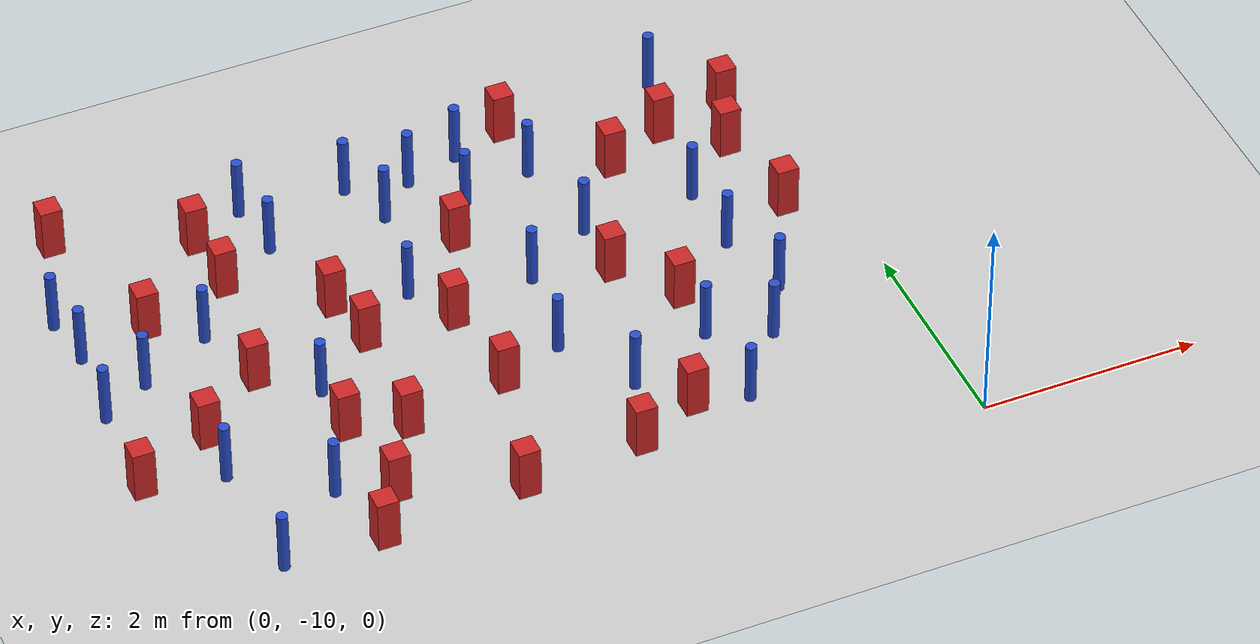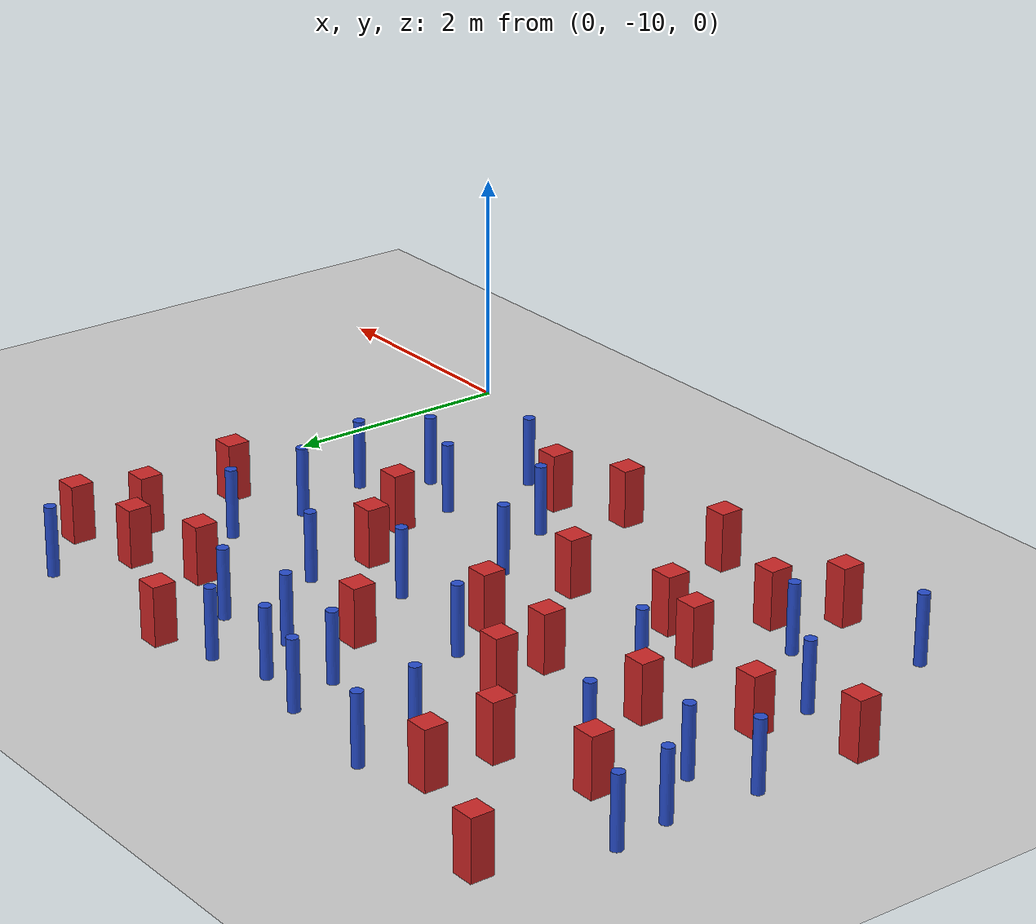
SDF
<sdf version="1.6">
 <world name="default">
  <model name="ground_plane">
   <static>1</static>
   <link name="link">
    <collision name="collision">
     <geometry><plane><normal>0 0 1</normal><size>100 100</size></plane></geometry>
     <surface><friction><ode><mu>100</mu><mu2>50</mu2></ode></friction></surface>
    </collision>
    <visual name="visual">
     <cast_shadows>0</cast_shadows>
     <geometry><plane><normal>0 0 1</normal><size>100 100</size></plane></geometry>
     <material>
      <ambient>1.0 1.0 1.0 1.0</ambient>
      <diffuse>0.8 0.8 0.8 1.0</diffuse>
      <specular>0.01 0.01 0.01 1.000000</specular>
     </material>
    </visual>
   </link>
  </model>
  <model name="pole_obstacle1">
   <static>true</static>
   <pose>-0.977106564519 -7.90810374782 7.38925637345e-09 -8.47170692799e-08 1.2497676509e-08 -1.74513093015e-07</pose>
   <link name="link">
    <pose>0 0 0.3 0 -0 0</pose>
    <inertial>
     <mass>1</mass>
     <inertia><ixx>0.145833</ixx><ixy>0</ixy><ixz>0</ixz><iyy>0.145833</iyy><iyz>0</iyz><izz>0.125</izz></inertia>
    </inertial>
    <collision name="collision">
     <geometry><cylinder><radius>0.05</radius><length>.6</length></cylinder></geometry>
    </collision>
    <visual name="visual">
     <geometry><cylinder><radius>0.05</radius><length>.6</length></cylinder></geometry>
     <material>
      <script><name>Gazebo/Blue</name><uri>file://media/materials/scripts/gazebo.material</uri></script>
     </material>
    </visual>
   </link>
  </model>
  <model name="pole_obstacle23">
   <static>true</static>
   <pose>-1.17780498482 -6.50733422358 7.38925637345e-09 -8.47170692799e-08 1.24976765033e-08 -1.74513093018e-07</pose>
   <link name="link">
    <pose>0 0 0.3 0 -0 0</pose>
    <inertial>
     <mass>1</mass>
     <inertia><ixx>0.145833</ixx><ixy>0</ixy><ixz>0</ixz><iyy>0.145833</iyy><iyz>0</iyz><izz>0.125</izz></inertia>
    </inertial>
    <collision name="collision">
     <geometry><cylinder><radius>0.05</radius><length>.6</length></cylinder></geometry>
    </collision>
    <visual name="visual">
     <geometry><cylinder><radius>0.05</radius><length>.6</length></cylinder></geometry>
     <material>
      <script><name>Gazebo/Blue</name><uri>file://media/materials/scripts/gazebo.material</uri></script>
     </material>
    </visual>
   </link>
  </model>
  <model name="square_post_obstacle20">
   <static>true</static>
   <pose>-2.86813609963 -9.24950000079 1.91545236811e-07 -7.35059704564e-06 1.12565212e-07 2.39332434364e-05</pose>
   <link name="link">
    <pose>0 0 0.25 0 -0 0</pose>
    <inertial>
     <mass>100</mass>
     <inertia>
      <ixx>0.166667</ixx>
      <ixy>0</ixy>
      <ixz>0</ixz>
      <iyy>0.166667</iyy>
      <iyz>0</iyz>
      <izz>0.166667</izz>
     </inertia>
    </inertial>
    <collision name="collision"><geometry><box><size>.2 .2 .5</size></box></geometry></collision>
    <visual name="visual">
     <geometry><box><size>.2 .2 .5</size></box></geometry>
     <material>
      <script><name>Gazebo/Red</name><uri>file://media/materials/scripts/gazebo.material</uri></script>
     </material>
    </visual>
   </link>
  </model>
  <model name="pole_obstacle31">
   <static>true</static>
   <pose>-2.90657559967 -6.9559049092 7.38925637345e-09 -8.47170692798e-08 1.24976765033e-08 -1.74513093019e-07</pose>
   <link name="link">
    <pose>0 0 0.3 0 -0 0</pose>
    <inertial>
     <mass>1</mass>
     <inertia><ixx>0.145833</ixx><ixy>0</ixy><ixz>0</ixz><iyy>0.145833</iyy><iyz>0</iyz><izz>0.125</izz></inertia>
    </inertial>
    <collision name="collision">
     <geometry><cylinder><radius>0.05</radius><length>.6</length></cylinder></geometry>
    </collision>
    <visual name="visual">
     <geometry><cylinder><radius>0.05</radius><length>.6</length></cylinder></geometry>
     <material>
      <script><name>Gazebo/Blue</name><uri>file://media/materials/scripts/gazebo.material</uri></script>
     </material>
    </visual>
   </link>
  </model>
  <model name="square_post_obstacle24">
   <static>true</static>
   <pose>-3.33205656357 -6.23677863321 1.91545236811e-07 -7.35059704564e-06 1.12565212e-07 2.39332434364e-05</pose>
   <link name="link">
    <pose>0 0 0.25 0 -0 0</pose>
    <inertial>
     <mass>100</mass>
     <inertia>
      <ixx>0.166667</ixx>
      <ixy>0</ixy>
      <ixz>0</ixz>
      <iyy>0.166667</iyy>
      <iyz>0</iyz>
      <izz>0.166667</izz>
     </inertia>
    </inertial>
    <collision name="collision"><geometry><box><size>.2 .2 .5</size></box></geometry></collision>
    <visual name="visual">
     <geometry><box><size>.2 .2 .5</size></box></geometry>
     <material>
      <script><name>Gazebo/Red</name><uri>file://media/materials/scripts/gazebo.material</uri></script>
     </material>
    </visual>
   </link>
  </model>
  <model name="square_post_obstacle29">
   <static>true</static>
   <pose>-4.63807292708 -6.58877502498 1.91545236811e-07 -7.35059704564e-06 1.12565212e-07 2.39332434364e-05</pose>
   <link name="link">
    <pose>0 0 0.25 0 -0 0</pose>
    <inertial>
     <mass>100</mass>
     <inertia>
      <ixx>0.166667</ixx>
      <ixy>0</ixy>
      <ixz>0</ixz>
      <iyy>0.166667</iyy>
      <iyz>0</iyz>
      <izz>0.166667</izz>
     </inertia>
    </inertial>
    <collision name="collision"><geometry><box><size>.2 .2 .5</size></box></geometry></collision>
    <visual name="visual">
     <geometry><box><size>.2 .2 .5</size></box></geometry>
     <material>
      <script><name>Gazebo/Red</name><uri>file://media/materials/scripts/gazebo.material</uri></script>
     </material>
    </visual>
   </link>
  </model>
  <model name="pole_obstacle35">
   <static>true</static>
   <pose>-2.90774598871 -5.19703590711 7.38925637345e-09 -8.47170692798e-08 1.24976765033e-08 -1.74513093019e-07</pose>
   <link name="link">
    <pose>0 0 0.3 0 -0 0</pose>
    <inertial>
     <mass>1</mass>
     <inertia><ixx>0.145833</ixx><ixy>0</ixy><ixz>0</ixz><iyy>0.145833</iyy><iyz>0</iyz><izz>0.125</izz></inertia>
    </inertial>
    <collision name="collision">
     <geometry><cylinder><radius>0.05</radius><length>.6</length></cylinder></geometry>
    </collision>
    <visual name="visual">
     <geometry><cylinder><radius>0.05</radius><length>.6</length></cylinder></geometry>
     <material>
      <script><name>Gazebo/Blue</name><uri>file://media/materials/scripts/gazebo.material</uri></script>
     </material>
    </visual>
   </link>
  </model>
  <model name="pole_obstacle36">
   <static>true</static>
   <pose>-5.11671994762 -7.55337310261 7.38925637345e-09 -8.47170692796e-08 1.24976764786e-08 -1.74513093032e-07</pose>
   <link name="link">
    <pose>0 0 0.3 0 -0 0</pose>
    <inertial>
     <mass>1</mass>
     <inertia><ixx>0.145833</ixx><ixy>0</ixy><ixz>0</ixz><iyy>0.145833</iyy><iyz>0</iyz><izz>0.125</izz></inertia>
    </inertial>
    <collision name="collision">
     <geometry><cylinder><radius>0.05</radius><length>.6</length></cylinder></geometry>
    </collision>
    <visual name="visual">
     <geometry><cylinder><radius>0.05</radius><length>.6</length></cylinder></geometry>
     <material>
      <script><name>Gazebo/Blue</name><uri>file://media/materials/scripts/gazebo.material</uri></script>
     </material>
    </visual>
   </link>
  </model>
  <model name="pole_obstacle37">
   <static>true</static>
   <pose>-5.79323783633 -6.5178271556 7.38925637345e-09 -8.47170692796e-08 1.24976764786e-08 -1.74513093032e-07</pose>
   <link name="link">
    <pose>0 0 0.3 0 -0 0</pose>
    <inertial>
     <mass>1</mass>
     <inertia><ixx>0.145833</ixx><ixy>0</ixy><ixz>0</ixz><iyy>0.145833</iyy><iyz>0</iyz><izz>0.125</izz></inertia>
    </inertial>
    <collision name="collision">
     <geometry><cylinder><radius>0.05</radius><length>.6</length></cylinder></geometry>
    </collision>
    <visual name="visual">
     <geometry><cylinder><radius>0.05</radius><length>.6</length></cylinder></geometry>
     <material>
      <script><name>Gazebo/Blue</name><uri>file://media/materials/scripts/gazebo.material</uri></script>
     </material>
    </visual>
   </link>
  </model>
  <model name="pole_obstacle39">
   <static>true</static>
   <pose>-3.78104056907 -5.6990967724 7.38925637345e-09 -8.47170692798e-08 1.24976765033e-08 -1.74513093019e-07</pose>
   <link name="link">
    <pose>0 0 0.3 0 -0 0</pose>
    <inertial>
     <mass>1</mass>
     <inertia><ixx>0.145833</ixx><ixy>0</ixy><ixz>0</ixz><iyy>0.145833</iyy><iyz>0</iyz><izz>0.125</izz></inertia>
    </inertial>
    <collision name="collision">
     <geometry><cylinder><radius>0.05</radius><length>.6</length></cylinder></geometry>
    </collision>
    <visual name="visual">
     <geometry><cylinder><radius>0.05</radius><length>.6</length></cylinder></geometry>
     <material>
      <script><name>Gazebo/Blue</name><uri>file://media/materials/scripts/gazebo.material</uri></script>
     </material>
    </visual>
   </link>
  </model>
  <model name="pole_obstacle41">
   <static>true</static>
   <pose>-1.26874110743 -8.43139247825 7.38925637345e-09 -8.47170692798e-08 1.24976764881e-08 -1.74513093027e-07</pose>
   <link name="link">
    <pose>0 0 0.3 0 -0 0</pose>
    <inertial>
     <mass>1</mass>
     <inertia><ixx>0.145833</ixx><ixy>0</ixy><ixz>0</ixz><iyy>0.145833</iyy><iyz>0</iyz><izz>0.125</izz></inertia>
    </inertial>
    <collision name="collision">
     <geometry><cylinder><radius>0.05</radius><length>.6</length></cylinder></geometry>
    </collision>
    <visual name="visual">
     <geometry><cylinder><radius>0.05</radius><length>.6</length></cylinder></geometry>
     <material>
      <script><name>Gazebo/Blue</name><uri>file://media/materials/scripts/gazebo.material</uri></script>
     </material>
    </visual>
   </link>
  </model>
  <model name="square_post_obstacle32">
   <static>true</static>
   <pose>-2.23821439525 -7.14210496996 1.91545236811e-07 -7.35059704564e-06 1.12565212e-07 2.39332434364e-05</pose>
   <link name="link">
    <pose>0 0 0.25 0 -0 0</pose>
    <inertial>
     <mass>100</mass>
     <inertia>
      <ixx>0.166667</ixx>
      <ixy>0</ixy>
      <ixz>0</ixz>
      <iyy>0.166667</iyy>
      <iyz>0</iyz>
      <izz>0.166667</izz>
     </inertia>
    </inertial>
    <collision name="collision"><geometry><box><size>.2 .2 .5</size></box></geometry></collision>
    <visual name="visual">
     <geometry><box><size>.2 .2 .5</size></box></geometry>
     <material>
      <script><name>Gazebo/Red</name><uri>file://media/materials/scripts/gazebo.material</uri></script>
     </material>
    </visual>
   </link>
  </model>
  <model name="square_post_obstacle36">
   <static>true</static>
   <pose>-4.99526958046 -8.95248441985 1.91545236811e-07 -7.35059704564e-06 1.12565212e-07 2.39332434364e-05</pose>
   <link name="link">
    <pose>0 0 0.25 0 -0 0</pose>
    <inertial>
     <mass>100</mass>
     <inertia>
      <ixx>0.166667</ixx>
      <ixy>0</ixy>
      <ixz>0</ixz>
      <iyy>0.166667</iyy>
      <iyz>0</iyz>
      <izz>0.166667</izz>
     </inertia>
    </inertial>
    <collision name="collision"><geometry><box><size>.2 .2 .5</size></box></geometry></collision>
    <visual name="visual">
     <geometry><box><size>.2 .2 .5</size></box></geometry>
     <material>
      <script><name>Gazebo/Red</name><uri>file://media/materials/scripts/gazebo.material</uri></script>
     </material>
    </visual>
   </link>
  </model>
  <model name="square_post_obstacle42">
   <static>true</static>
   <pose>-3.63885541461 -8.07731059607 1.91545236811e-07 -7.35059704564e-06 1.12565212e-07 2.39332434364e-05</pose>
   <link name="link">
    <pose>0 0 0.25 0 -0 0</pose>
    <inertial>
     <mass>100</mass>
     <inertia>
      <ixx>0.166667</ixx>
      <ixy>0</ixy>
      <ixz>0</ixz>
      <iyy>0.166667</iyy>
      <iyz>0</iyz>
      <izz>0.166667</izz>
     </inertia>
    </inertial>
    <collision name="collision"><geometry><box><size>.2 .2 .5</size></box></geometry></collision>
    <visual name="visual">
     <geometry><box><size>.2 .2 .5</size></box></geometry>
     <material>
      <script><name>Gazebo/Red</name><uri>file://media/materials/scripts/gazebo.material</uri></script>
     </material>
    </visual>
   </link>
  </model>
  <model name="square_post_obstacle44">
   <static>true</static>
   <pose>-6.9381495544 -8.05555435549 1.91545236811e-07 -7.35059704564e-06 1.12565212e-07 2.39332434364e-05</pose>
   <link name="link">
    <pose>0 0 0.25 0 -0 0</pose>
    <inertial>
     <mass>100</mass>
     <inertia>
      <ixx>0.166667</ixx>
      <ixy>0</ixy>
      <ixz>0</ixz>
      <iyy>0.166667</iyy>
      <iyz>0</iyz>
      <izz>0.166667</izz>
     </inertia>
    </inertial>
    <collision name="collision"><geometry><box><size>.2 .2 .5</size></box></geometry></collision>
    <visual name="visual">
     <geometry><box><size>.2 .2 .5</size></box></geometry>
     <material>
      <script><name>Gazebo/Red</name><uri>file://media/materials/scripts/gazebo.material</uri></script>
     </material>
    </visual>
   </link>
  </model>
  <model name="square_post_obstacle49">
   <static>true</static>
   <pose>-2.4064913676 -5.04163717046 1.91545236811e-07 -7.35059704564e-06 1.12565212e-07 2.39332434364e-05</pose>
   <link name="link">
    <pose>0 0 0.25 0 -0 0</pose>
    <inertial>
     <mass>100</mass>
     <inertia>
      <ixx>0.166667</ixx>
      <ixy>0</ixy>
      <ixz>0</ixz>
      <iyy>0.166667</iyy>
      <iyz>0</iyz>
      <izz>0.166667</izz>
     </inertia>
    </inertial>
    <collision name="collision"><geometry><box><size>.2 .2 .5</size></box></geometry></collision>
    <visual name="visual">
     <geometry><box><size>.2 .2 .5</size></box></geometry>
     <material>
      <script><name>Gazebo/Red</name><uri>file://media/materials/scripts/gazebo.material</uri></script>
     </material>
    </visual>
   </link>
  </model>
  <model name="pole_obstacle68">
   <static>true</static>
   <pose>-6.17812981211 -9.38923308354 7.38925637345e-09 -8.471706928e-08 1.24976765081e-08 -1.74513093015e-07</pose>
   <link name="link">
    <pose>0 0 0.3 0 -0 0</pose>
    <inertial>
     <mass>1</mass>
     <inertia><ixx>0.145833</ixx><ixy>0</ixy><ixz>0</ixz><iyy>0.145833</iyy><iyz>0</iyz><izz>0.125</izz></inertia>
    </inertial>
    <collision name="collision">
     <geometry><cylinder><radius>0.05</radius><length>.6</length></cylinder></geometry>
    </collision>
    <visual name="visual">
     <geometry><cylinder><radius>0.05</radius><length>.6</length></cylinder></geometry>
     <material>
      <script><name>Gazebo/Blue</name><uri>file://media/materials/scripts/gazebo.material</uri></script>
     </material>
    </visual>
   </link>
  </model>
  <model name="square_post_obstacle51">
   <static>true</static>
   <pose>-0.634851174952 -6.02802221747 1.91545236811e-07 -7.35059704564e-06 1.12565212e-07 2.39332434364e-05</pose>
   <link name="link">
    <pose>0 0 0.25 0 -0 0</pose>
    <inertial>
     <mass>100</mass>
     <inertia>
      <ixx>0.166667</ixx>
      <ixy>0</ixy>
      <ixz>0</ixz>
      <iyy>0.166667</iyy>
      <iyz>0</iyz>
      <izz>0.166667</izz>
     </inertia>
    </inertial>
    <collision name="collision"><geometry><box><size>.2 .2 .5</size></box></geometry></collision>
    <visual name="visual">
     <geometry><box><size>.2 .2 .5</size></box></geometry>
     <material>
      <script><name>Gazebo/Red</name><uri>file://media/materials/scripts/gazebo.material</uri></script>
     </material>
    </visual>
   </link>
  </model>
  <model name="pole_obstacle69">
   <static>true</static>
   <pose>-5.46517937993 -8.7423076603 7.38925637345e-09 -8.471706928e-08 1.24976765081e-08 -1.74513093015e-07</pose>
   <link name="link">
    <pose>0 0 0.3 0 -0 0</pose>
    <inertial>
     <mass>1</mass>
     <inertia><ixx>0.145833</ixx><ixy>0</ixy><ixz>0</ixz><iyy>0.145833</iyy><iyz>0</iyz><izz>0.125</izz></inertia>
    </inertial>
    <collision name="collision">
     <geometry><cylinder><radius>0.05</radius><length>.6</length></cylinder></geometry>
    </collision>
    <visual name="visual">
     <geometry><cylinder><radius>0.05</radius><length>.6</length></cylinder></geometry>
     <material>
      <script><name>Gazebo/Blue</name><uri>file://media/materials/scripts/gazebo.material</uri></script>
     </material>
    </visual>
   </link>
  </model>
  <model name="square_post_obstacle61">
   <static>true</static>
   <pose>-6.61290565987 -4.87920839196 1.91545236811e-07 -7.35059704564e-06 1.12565212e-07 2.39332434364e-05</pose>
   <link name="link">
    <pose>0 0 0.25 0 -0 0</pose>
    <inertial>
     <mass>100</mass>
     <inertia>
      <ixx>0.166667</ixx>
      <ixy>0</ixy>
      <ixz>0</ixz>
      <iyy>0.166667</iyy>
      <iyz>0</iyz>
      <izz>0.166667</izz>
     </inertia>
    </inertial>
    <collision name="collision"><geometry><box><size>.2 .2 .5</size></box></geometry></collision>
    <visual name="visual">
     <geometry><box><size>.2 .2 .5</size></box></geometry>
     <material>
      <script><name>Gazebo/Red</name><uri>file://media/materials/scripts/gazebo.material</uri></script>
     </material>
    </visual>
   </link>
  </model>
  <model name="pole_obstacle77">
   <static>true</static>
   <pose>-4.86102485555 -5.67017103879 7.38925637345e-09 -8.47170692796e-08 1.24976764786e-08 -1.74513093032e-07</pose>
   <link name="link">
    <pose>0 0 0.3 0 -0 0</pose>
    <inertial>
     <mass>1</mass>
     <inertia><ixx>0.145833</ixx><ixy>0</ixy><ixz>0</ixz><iyy>0.145833</iyy><iyz>0</iyz><izz>0.125</izz></inertia>
    </inertial>
    <collision name="collision">
     <geometry><cylinder><radius>0.05</radius><length>.6</length></cylinder></geometry>
    </collision>
    <visual name="visual">
     <geometry><cylinder><radius>0.05</radius><length>.6</length></cylinder></geometry>
     <material>
      <script><name>Gazebo/Blue</name><uri>file://media/materials/scripts/gazebo.material</uri></script>
     </material>
    </visual>
   </link>
  </model>
  <model name="pole_obstacle84">
   <static>true</static>
   <pose>-1.782549432 -9.07870129123 7.38925637345e-09 -8.47170692798e-08 1.24976764881e-08 -1.74513093027e-07</pose>
   <link name="link">
    <pose>0 0 0.3 0 -0 0</pose>
    <inertial>
     <mass>1</mass>
     <inertia><ixx>0.145833</ixx><ixy>0</ixy><ixz>0</ixz><iyy>0.145833</iyy><iyz>0</iyz><izz>0.125</izz></inertia>
    </inertial>
    <collision name="collision">
     <geometry><cylinder><radius>0.05</radius><length>.6</length></cylinder></geometry>
    </collision>
    <visual name="visual">
     <geometry><cylinder><radius>0.05</radius><length>.6</length></cylinder></geometry>
     <material>
      <script><name>Gazebo/Blue</name><uri>file://media/materials/scripts/gazebo.material</uri></script>
     </material>
    </visual>
   </link>
  </model>
  <model name="pole_obstacle85">
   <static>true</static>
   <pose>-2.38964520613 -5.64353657449 7.38925637345e-09 -8.47170692798e-08 1.24976765033e-08 -1.74513093019e-07</pose>
   <link name="link">
    <pose>0 0 0.3 0 -0 0</pose>
    <inertial>
     <mass>1</mass>
     <inertia><ixx>0.145833</ixx><ixy>0</ixy><ixz>0</ixz><iyy>0.145833</iyy><iyz>0</iyz><izz>0.125</izz></inertia>
    </inertial>
    <collision name="collision">
     <geometry><cylinder><radius>0.05</radius><length>.6</length></cylinder></geometry>
    </collision>
    <visual name="visual">
     <geometry><cylinder><radius>0.05</radius><length>.6</length></cylinder></geometry>
     <material>
      <script><name>Gazebo/Blue</name><uri>file://media/materials/scripts/gazebo.material</uri></script>
     </material>
    </visual>
   </link>
  </model>
  <model name="pole_obstacle89">
   <static>true</static>
   <pose>-1.81432175826 -8.21068067207 7.38925637345e-09 -8.47170692798e-08 1.24976764881e-08 -1.74513093027e-07</pose>
   <link name="link">
    <pose>0 0 0.3 0 -0 0</pose>
    <inertial>
     <mass>1</mass>
     <inertia><ixx>0.145833</ixx><ixy>0</ixy><ixz>0</ixz><iyy>0.145833</iyy><iyz>0</iyz><izz>0.125</izz></inertia>
    </inertial>
    <collision name="collision">
     <geometry><cylinder><radius>0.05</radius><length>.6</length></cylinder></geometry>
    </collision>
    <visual name="visual">
     <geometry><cylinder><radius>0.05</radius><length>.6</length></cylinder></geometry>
     <material>
      <script><name>Gazebo/Blue</name><uri>file://media/materials/scripts/gazebo.material</uri></script>
     </material>
    </visual>
   </link>
  </model>
  <model name="square_post_obstacle79">
   <static>true</static>
   <pose>-1.68980765462 -5.87723704939 1.91545236811e-07 -7.35059704564e-06 1.12565212e-07 2.39332434364e-05</pose>
   <link name="link">
    <pose>0 0 0.25 0 -0 0</pose>
    <inertial>
     <mass>100</mass>
     <inertia>
      <ixx>0.166667</ixx>
      <ixy>0</ixy>
      <ixz>0</ixz>
      <iyy>0.166667</iyy>
      <iyz>0</iyz>
      <izz>0.166667</izz>
     </inertia>
    </inertial>
    <collision name="collision"><geometry><box><size>.2 .2 .5</size></box></geometry></collision>
    <visual name="visual">
     <geometry><box><size>.2 .2 .5</size></box></geometry>
     <material>
      <script><name>Gazebo/Red</name><uri>file://media/materials/scripts/gazebo.material</uri></script>
     </material>
    </visual>
   </link>
  </model>
  <model name="square_post_obstacle83">
   <static>true</static>
   <pose>-4.53171537747 -7.11707636548 1.91545236811e-07 -7.35059704564e-06 1.12565212e-07 2.39332434364e-05</pose>
   <link name="link">
    <pose>0 0 0.25 0 -0 0</pose>
    <inertial>
     <mass>100</mass>
     <inertia>
      <ixx>0.166667</ixx>
      <ixy>0</ixy>
      <ixz>0</ixz>
      <iyy>0.166667</iyy>
      <iyz>0</iyz>
      <izz>0.166667</izz>
     </inertia>
    </inertial>
    <collision name="collision"><geometry><box><size>.2 .2 .5</size></box></geometry></collision>
    <visual name="visual">
     <geometry><box><size>.2 .2 .5</size></box></geometry>
     <material>
      <script><name>Gazebo/Red</name><uri>file://media/materials/scripts/gazebo.material</uri></script>
     </material>
    </visual>
   </link>
  </model>
  <model name="pole_obstacle97">
   <static>true</static>
   <pose>-3.04838690185 -5.78160519611 7.38925637345e-09 -8.47170692798e-08 1.24976765033e-08 -1.74513093019e-07</pose>
   <link name="link">
    <pose>0 0 0.3 0 -0 0</pose>
    <inertial>
     <mass>1</mass>
     <inertia><ixx>0.145833</ixx><ixy>0</ixy><ixz>0</ixz><iyy>0.145833</iyy><iyz>0</iyz><izz>0.125</izz></inertia>
    </inertial>
    <collision name="collision">
     <geometry><cylinder><radius>0.05</radius><length>.6</length></cylinder></geometry>
    </collision>
    <visual name="visual">
     <geometry><cylinder><radius>0.05</radius><length>.6</length></cylinder></geometry>
     <material>
      <script><name>Gazebo/Blue</name><uri>file://media/materials/scripts/gazebo.material</uri></script>
     </material>
    </visual>
   </link>
  </model>
  <model name="pole_obstacle98">
   <static>true</static>
   <pose>-1.15943687055 -7.21081775933 7.38925637345e-09 -8.47170692799e-08 1.24976765033e-08 -1.74513093018e-07</pose>
   <link name="link">
    <pose>0 0 0.3 0 -0 0</pose>
    <inertial>
     <mass>1</mass>
     <inertia><ixx>0.145833</ixx><ixy>0</ixy><ixz>0</ixz><iyy>0.145833</iyy><iyz>0</iyz><izz>0.125</izz></inertia>
    </inertial>
    <collision name="collision">
     <geometry><cylinder><radius>0.05</radius><length>.6</length></cylinder></geometry>
    </collision>
    <visual name="visual">
     <geometry><cylinder><radius>0.05</radius><length>.6</length></cylinder></geometry>
     <material>
      <script><name>Gazebo/Blue</name><uri>file://media/materials/scripts/gazebo.material</uri></script>
     </material>
    </visual>
   </link>
  </model>
  <model name="square_post_obstacle98">
   <static>true</static>
   <pose>-4.60083637587 -8.26176480397 1.91545236811e-07 -7.35059704564e-06 1.12565212e-07 2.39332434364e-05</pose>
   <link name="link">
    <pose>0 0 0.25 0 -0 0</pose>
    <inertial>
     <mass>100</mass>
     <inertia>
      <ixx>0.166667</ixx>
      <ixy>0</ixy>
      <ixz>0</ixz>
      <iyy>0.166667</iyy>
      <iyz>0</iyz>
      <izz>0.166667</izz>
     </inertia>
    </inertial>
    <collision name="collision"><geometry><box><size>.2 .2 .5</size></box></geometry></collision>
    <visual name="visual">
     <geometry><box><size>.2 .2 .5</size></box></geometry>
     <material>
      <script><name>Gazebo/Red</name><uri>file://media/materials/scripts/gazebo.material</uri></script>
     </material>
    </visual>
   </link>
  </model>
  <model name="pole_obstacle105">
   <static>true</static>
   <pose>-2.62448096984 -8.547050092 7.38925637345e-09 -8.47170692793e-08 1.24976764408e-08 -1.74513093041e-07</pose>
   <link name="link">
    <pose>0 0 0.3 0 -0 0</pose>
    <inertial>
     <mass>1</mass>
     <inertia><ixx>0.145833</ixx><ixy>0</ixy><ixz>0</ixz><iyy>0.145833</iyy><iyz>0</iyz><izz>0.125</izz></inertia>
    </inertial>
    <collision name="collision">
     <geometry><cylinder><radius>0.05</radius><length>.6</length></cylinder></geometry>
    </collision>
    <visual name="visual">
     <geometry><cylinder><radius>0.05</radius><length>.6</length></cylinder></geometry>
     <material>
      <script><name>Gazebo/Blue</name><uri>file://media/materials/scripts/gazebo.material</uri></script>
     </material>
    </visual>
   </link>
  </model>
  <model name="square_post_obstacle100">
   <static>true</static>
   <pose>-0.498190368255 -6.95895025386 1.91545236811e-07 -7.35059704564e-06 1.12565212e-07 2.39332434364e-05</pose>
   <link name="link">
    <pose>0 0 0.25 0 -0 0</pose>
    <inertial>
     <mass>100</mass>
     <inertia>
      <ixx>0.166667</ixx>
      <ixy>0</ixy>
      <ixz>0</ixz>
      <iyy>0.166667</iyy>
      <iyz>0</iyz>
      <izz>0.166667</izz>
     </inertia>
    </inertial>
    <collision name="collision"><geometry><box><size>.2 .2 .5</size></box></geometry></collision>
    <visual name="visual">
     <geometry><box><size>.2 .2 .5</size></box></geometry>
     <material>
      <script><name>Gazebo/Red</name><uri>file://media/materials/scripts/gazebo.material</uri></script>
     </material>
    </visual>
   </link>
  </model>
  <model name="pole_obstacle113">
   <static>true</static>
   <pose>-6.46648329556 -6.86375321901 7.38925637345e-09 -8.47170692796e-08 1.24976764786e-08 -1.74513093032e-07</pose>
   <link name="link">
    <pose>0 0 0.3 0 -0 0</pose>
    <inertial>
     <mass>1</mass>
     <inertia><ixx>0.145833</ixx><ixy>0</ixy><ixz>0</ixz><iyy>0.145833</iyy><iyz>0</iyz><izz>0.125</izz></inertia>
    </inertial>
    <collision name="collision">
     <geometry><cylinder><radius>0.05</radius><length>.6</length></cylinder></geometry>
    </collision>
    <visual name="visual">
     <geometry><cylinder><radius>0.05</radius><length>.6</length></cylinder></geometry>
     <material>
      <script><name>Gazebo/Blue</name><uri>file://media/materials/scripts/gazebo.material</uri></script>
     </material>
    </visual>
   </link>
  </model>
  <model name="pole_obstacle124">
   <static>true</static>
   <pose>-2.24048149863 -6.55366146217 7.38925637345e-09 -8.47170692798e-08 1.24976765033e-08 -1.74513093019e-07</pose>
   <link name="link">
    <pose>0 0 0.3 0 -0 0</pose>
    <inertial>
     <mass>1</mass>
     <inertia><ixx>0.145833</ixx><ixy>0</ixy><ixz>0</ixz><iyy>0.145833</iyy><iyz>0</iyz><izz>0.125</izz></inertia>
    </inertial>
    <collision name="collision">
     <geometry><cylinder><radius>0.05</radius><length>.6</length></cylinder></geometry>
    </collision>
    <visual name="visual">
     <geometry><cylinder><radius>0.05</radius><length>.6</length></cylinder></geometry>
     <material>
      <script><name>Gazebo/Blue</name><uri>file://media/materials/scripts/gazebo.material</uri></script>
     </material>
    </visual>
   </link>
  </model>
  <model name="pole_obstacle127">
   <static>true</static>
   <pose>-6.91901229952 -7.12209717429 7.38925637345e-09 -8.47170692796e-08 1.24976764786e-08 -1.74513093032e-07</pose>
   <link name="link">
    <pose>0 0 0.3 0 -0 0</pose>
    <inertial>
     <mass>1</mass>
     <inertia><ixx>0.145833</ixx><ixy>0</ixy><ixz>0</ixz><iyy>0.145833</iyy><iyz>0</iyz><izz>0.125</izz></inertia>
    </inertial>
    <collision name="collision">
     <geometry><cylinder><radius>0.05</radius><length>.6</length></cylinder></geometry>
    </collision>
    <visual name="visual">
     <geometry><cylinder><radius>0.05</radius><length>.6</length></cylinder></geometry>
     <material>
      <script><name>Gazebo/Blue</name><uri>file://media/materials/scripts/gazebo.material</uri></script>
     </material>
    </visual>
   </link>
  </model>
  <model name="square_post_obstacle124">
   <static>true</static>
   <pose>-1.10650806067 -5.62486031278 1.91545236811e-07 -7.35059704564e-06 1.12565212e-07 2.39332434364e-05</pose>
   <link name="link">
    <pose>0 0 0.25 0 -0 0</pose>
    <inertial>
     <mass>100</mass>
     <inertia>
      <ixx>0.166667</ixx>
      <ixy>0</ixy>
      <ixz>0</ixz>
      <iyy>0.166667</iyy>
      <iyz>0</iyz>
      <izz>0.166667</izz>
     </inertia>
    </inertial>
    <collision name="collision"><geometry><box><size>.2 .2 .5</size></box></geometry></collision>
    <visual name="visual">
     <geometry><box><size>.2 .2 .5</size></box></geometry>
     <material>
      <script><name>Gazebo/Red</name><uri>file://media/materials/scripts/gazebo.material</uri></script>
     </material>
    </visual>
   </link>
  </model>
  <model name="pole_obstacle130">
   <static>true</static>
   <pose>-3.04354601416 -7.84832495521 7.38925637345e-09 -8.47170692798e-08 1.24976765033e-08 -1.74513093019e-07</pose>
   <link name="link">
    <pose>0 0 0.3 0 -0 0</pose>
    <inertial>
     <mass>1</mass>
     <inertia><ixx>0.145833</ixx><ixy>0</ixy><ixz>0</ixz><iyy>0.145833</iyy><iyz>0</iyz><izz>0.125</izz></inertia>
    </inertial>
    <collision name="collision">
     <geometry><cylinder><radius>0.05</radius><length>.6</length></cylinder></geometry>
    </collision>
    <visual name="visual">
     <geometry><cylinder><radius>0.05</radius><length>.6</length></cylinder></geometry>
     <material>
      <script><name>Gazebo/Blue</name><uri>file://media/materials/scripts/gazebo.material</uri></script>
     </material>
    </visual>
   </link>
  </model>
  <model name="pole_obstacle133">
   <static>true</static>
   <pose>-3.97204801791 -6.70621015783 7.38925637345e-09 -8.471706928e-08 1.24976765147e-08 -1.74513093014e-07</pose>
   <link name="link">
    <pose>0 0 0.3 0 -0 0</pose>
    <inertial>
     <mass>1</mass>
     <inertia><ixx>0.145833</ixx><ixy>0</ixy><ixz>0</ixz><iyy>0.145833</iyy><iyz>0</iyz><izz>0.125</izz></inertia>
    </inertial>
    <collision name="collision">
     <geometry><cylinder><radius>0.05</radius><length>.6</length></cylinder></geometry>
    </collision>
    <visual name="visual">
     <geometry><cylinder><radius>0.05</radius><length>.6</length></cylinder></geometry>
     <material>
      <script><name>Gazebo/Blue</name><uri>file://media/materials/scripts/gazebo.material</uri></script>
     </material>
    </visual>
   </link>
  </model>
  <model name="pole_obstacle142">
   <static>true</static>
   <pose>-6.23647437491 -8.20198909685 7.38925637345e-09 -8.471706928e-08 1.24976765081e-08 -1.74513093015e-07</pose>
   <link name="link">
    <pose>0 0 0.3 0 -0 0</pose>
    <inertial>
     <mass>1</mass>
     <inertia><ixx>0.145833</ixx><ixy>0</ixy><ixz>0</ixz><iyy>0.145833</iyy><iyz>0</iyz><izz>0.125</izz></inertia>
    </inertial>
    <collision name="collision">
     <geometry><cylinder><radius>0.05</radius><length>.6</length></cylinder></geometry>
    </collision>
    <visual name="visual">
     <geometry><cylinder><radius>0.05</radius><length>.6</length></cylinder></geometry>
     <material>
      <script><name>Gazebo/Blue</name><uri>file://media/materials/scripts/gazebo.material</uri></script>
     </material>
    </visual>
   </link>
  </model>
  <model name="pole_obstacle145">
   <static>true</static>
   <pose>-4.93717919328 -5.11330743757 7.38925637345e-09 -8.47170692796e-08 1.24976764786e-08 -1.74513093032e-07</pose>
   <link name="link">
    <pose>0 0 0.3 0 -0 0</pose>
    <inertial>
     <mass>1</mass>
     <inertia><ixx>0.145833</ixx><ixy>0</ixy><ixz>0</ixz><iyy>0.145833</iyy><iyz>0</iyz><izz>0.125</izz></inertia>
    </inertial>
    <collision name="collision">
     <geometry><cylinder><radius>0.05</radius><length>.6</length></cylinder></geometry>
    </collision>
    <visual name="visual">
     <geometry><cylinder><radius>0.05</radius><length>.6</length></cylinder></geometry>
     <material>
      <script><name>Gazebo/Blue</name><uri>file://media/materials/scripts/gazebo.material</uri></script>
     </material>
    </visual>
   </link>
  </model>
  <model name="square_post_obstacle140">
   <static>true</static>
   <pose>-3.97621520019 -9.3370335656 1.91545236811e-07 -7.35059704564e-06 1.12565212e-07 2.39332434364e-05</pose>
   <link name="link">
    <pose>0 0 0.25 0 -0 0</pose>
    <inertial>
     <mass>100</mass>
     <inertia>
      <ixx>0.166667</ixx>
      <ixy>0</ixy>
      <ixz>0</ixz>
      <iyy>0.166667</iyy>
      <iyz>0</iyz>
      <izz>0.166667</izz>
     </inertia>
    </inertial>
    <collision name="collision"><geometry><box><size>.2 .2 .5</size></box></geometry></collision>
    <visual name="visual">
     <geometry><box><size>.2 .2 .5</size></box></geometry>
     <material>
      <script><name>Gazebo/Red</name><uri>file://media/materials/scripts/gazebo.material</uri></script>
     </material>
    </visual>
   </link>
  </model>
  <model name="pole_obstacle147">
   <static>true</static>
   <pose>-6.85775502637 -6.34219939677 7.38925637345e-09 -8.47170692796e-08 1.24976764786e-08 -1.74513093032e-07</pose>
   <link name="link">
    <pose>0 0 0.3 0 -0 0</pose>
    <inertial>
     <mass>1</mass>
     <inertia><ixx>0.145833</ixx><ixy>0</ixy><ixz>0</ixz><iyy>0.145833</iyy><iyz>0</iyz><izz>0.125</izz></inertia>
    </inertial>
    <collision name="collision">
     <geometry><cylinder><radius>0.05</radius><length>.6</length></cylinder></geometry>
    </collision>
    <visual name="visual">
     <geometry><cylinder><radius>0.05</radius><length>.6</length></cylinder></geometry>
     <material>
      <script><name>Gazebo/Blue</name><uri>file://media/materials/scripts/gazebo.material</uri></script>
     </material>
    </visual>
   </link>
  </model>
  <model name="square_post_obstacle144">
   <static>true</static>
   <pose>-0.439004716006 -5.49582249831 1.91545236811e-07 -7.35059704564e-06 1.12565212e-07 2.39332434364e-05</pose>
   <link name="link">
    <pose>0 0 0.25 0 -0 0</pose>
    <inertial>
     <mass>100</mass>
     <inertia>
      <ixx>0.166667</ixx>
      <ixy>0</ixy>
      <ixz>0</ixz>
      <iyy>0.166667</iyy>
      <iyz>0</iyz>
      <izz>0.166667</izz>
     </inertia>
    </inertial>
    <collision name="collision"><geometry><box><size>.2 .2 .5</size></box></geometry></collision>
    <visual name="visual">
     <geometry><box><size>.2 .2 .5</size></box></geometry>
     <material>
      <script><name>Gazebo/Red</name><uri>file://media/materials/scripts/gazebo.material</uri></script>
     </material>
    </visual>
   </link>
  </model>
  <model name="square_post_obstacle147">
   <static>true</static>
   <pose>-6.21933493021 -6.21586419886 1.91545236811e-07 -7.35059704564e-06 1.12565212e-07 2.39332434364e-05</pose>
   <link name="link">
    <pose>0 0 0.25 0 -0 0</pose>
    <inertial>
     <mass>100</mass>
     <inertia>
      <ixx>0.166667</ixx>
      <ixy>0</ixy>
      <ixz>0</ixz>
      <iyy>0.166667</iyy>
      <iyz>0</iyz>
      <izz>0.166667</izz>
     </inertia>
    </inertial>
    <collision name="collision"><geometry><box><size>.2 .2 .5</size></box></geometry></collision>
    <visual name="visual">
     <geometry><box><size>.2 .2 .5</size></box></geometry>
     <material>
      <script><name>Gazebo/Red</name><uri>file://media/materials/scripts/gazebo.material</uri></script>
     </material>
    </visual>
   </link>
  </model>
  <model name="square_post_obstacle151">
   <static>true</static>
   <pose>-1.82551699711 -7.69340392312 1.91545236811e-07 -7.35059704564e-06 1.12565212e-07 2.39332434364e-05</pose>
   <link name="link">
    <pose>0 0 0.25 0 -0 0</pose>
    <inertial>
     <mass>100</mass>
     <inertia>
      <ixx>0.166667</ixx>
      <ixy>0</ixy>
      <ixz>0</ixz>
      <iyy>0.166667</iyy>
      <iyz>0</iyz>
      <izz>0.166667</izz>
     </inertia>
    </inertial>
    <collision name="collision"><geometry><box><size>.2 .2 .5</size></box></geometry></collision>
    <visual name="visual">
     <geometry><box><size>.2 .2 .5</size></box></geometry>
     <material>
      <script><name>Gazebo/Red</name><uri>file://media/materials/scripts/gazebo.material</uri></script>
     </material>
    </visual>
   </link>
  </model>
  <model name="square_post_obstacle163">
   <static>true</static>
   <pose>-5.28826664409 -9.42646814962 1.91545236811e-07 -7.35059704564e-06 1.12565212e-07 2.39332434364e-05</pose>
   <link name="link">
    <pose>0 0 0.25 0 -0 0</pose>
    <inertial>
     <mass>100</mass>
     <inertia>
      <ixx>0.166667</ixx>
      <ixy>0</ixy>
      <ixz>0</ixz>
      <iyy>0.166667</iyy>
      <iyz>0</iyz>
      <izz>0.166667</izz>
     </inertia>
    </inertial>
    <collision name="collision"><geometry><box><size>.2 .2 .5</size></box></geometry></collision>
    <visual name="visual">
     <geometry><box><size>.2 .2 .5</size></box></geometry>
     <material>
      <script><name>Gazebo/Red</name><uri>file://media/materials/scripts/gazebo.material</uri></script>
     </material>
    </visual>
   </link>
  </model>
  <model name="square_post_obstacle170">
   <static>true</static>
   <pose>-5.58530820553 -7.18717249324 1.91545236811e-07 -7.35059704564e-06 1.12565212e-07 2.39332434364e-05</pose>
   <link name="link">
    <pose>0 0 0.25 0 -0 0</pose>
    <inertial>
     <mass>100</mass>
     <inertia>
      <ixx>0.166667</ixx>
      <ixy>0</ixy>
      <ixz>0</ixz>
      <iyy>0.166667</iyy>
      <iyz>0</iyz>
      <izz>0.166667</izz>
     </inertia>
    </inertial>
    <collision name="collision"><geometry><box><size>.2 .2 .5</size></box></geometry></collision>
    <visual name="visual">
     <geometry><box><size>.2 .2 .5</size></box></geometry>
     <material>
      <script><name>Gazebo/Red</name><uri>file://media/materials/scripts/gazebo.material</uri></script>
     </material>
    </visual>
   </link>
  </model>
  <model name="pole_obstacle171">
   <static>true</static>
   <pose>-0.930157932235 -4.9758569295 7.38925637345e-09 -8.471706928e-08 1.24976765086e-08 -1.74513093015e-07</pose>
   <link name="link">
    <pose>0 0 0.3 0 -0 0</pose>
    <inertial>
     <mass>1</mass>
     <inertia><ixx>0.145833</ixx><ixy>0</ixy><ixz>0</ixz><iyy>0.145833</iyy><iyz>0</iyz><izz>0.125</izz></inertia>
    </inertial>
    <collision name="collision">
     <geometry><cylinder><radius>0.05</radius><length>.6</length></cylinder></geometry>
    </collision>
    <visual name="visual">
     <geometry><cylinder><radius>0.05</radius><length>.6</length></cylinder></geometry>
     <material>
      <script><name>Gazebo/Blue</name><uri>file://media/materials/scripts/gazebo.material</uri></script>
     </material>
    </visual>
   </link>
  </model>
  <model name="pole_obstacle174">
   <static>true</static>
   <pose>-3.97509477348 -5.2174930269 7.38925637345e-09 -8.47170692799e-08 1.24976764985e-08 -1.74513093022e-07</pose>
   <link name="link">
    <pose>0 0 0.3 0 -0 0</pose>
    <inertial>
     <mass>1</mass>
     <inertia><ixx>0.145833</ixx><ixy>0</ixy><ixz>0</ixz><iyy>0.145833</iyy><iyz>0</iyz><izz>0.125</izz></inertia>
    </inertial>
    <collision name="collision">
     <geometry><cylinder><radius>0.05</radius><length>.6</length></cylinder></geometry>
    </collision>
    <visual name="visual">
     <geometry><cylinder><radius>0.05</radius><length>.6</length></cylinder></geometry>
     <material>
      <script><name>Gazebo/Blue</name><uri>file://media/materials/scripts/gazebo.material</uri></script>
     </material>
    </visual>
   </link>
  </model>
  <model name="pole_obstacle176">
   <static>true</static>
   <pose>-6.93302903725 -5.84582676979 7.38925637345e-09 -8.47170692796e-08 1.24976764786e-08 -1.74513093032e-07</pose>
   <link name="link">
    <pose>0 0 0.3 0 -0 0</pose>
    <inertial>
     <mass>1</mass>
     <inertia><ixx>0.145833</ixx><ixy>0</ixy><ixz>0</ixz><iyy>0.145833</iyy><iyz>0</iyz><izz>0.125</izz></inertia>
    </inertial>
    <collision name="collision">
     <geometry><cylinder><radius>0.05</radius><length>.6</length></cylinder></geometry>
    </collision>
    <visual name="visual">
     <geometry><cylinder><radius>0.05</radius><length>.6</length></cylinder></geometry>
     <material>
      <script><name>Gazebo/Blue</name><uri>file://media/materials/scripts/gazebo.material</uri></script>
     </material>
    </visual>
   </link>
  </model>
  <model name="square_post_obstacle174">
   <static>true</static>
   <pose>-6.21908312646 -7.69856174175 1.91545236811e-07 -7.35059704564e-06 1.12565212e-07 2.39332434364e-05</pose>
   <link name="link">
    <pose>0 0 0.25 0 -0 0</pose>
    <inertial>
     <mass>100</mass>
     <inertia>
      <ixx>0.166667</ixx>
      <ixy>0</ixy>
      <ixz>0</ixz>
      <iyy>0.166667</iyy>
      <iyz>0</iyz>
      <izz>0.166667</izz>
     </inertia>
    </inertial>
    <collision name="collision"><geometry><box><size>.2 .2 .5</size></box></geometry></collision>
    <visual name="visual">
     <geometry><box><size>.2 .2 .5</size></box></geometry>
     <material>
      <script><name>Gazebo/Red</name><uri>file://media/materials/scripts/gazebo.material</uri></script>
     </material>
    </visual>
   </link>
  </model>
  <model name="square_post_obstacle176">
   <static>true</static>
   <pose>-2.27376617928 -8.97742923486 1.91545236811e-07 -7.35059704564e-06 1.12565212e-07 2.39332434364e-05</pose>
   <link name="link">
    <pose>0 0 0.25 0 -0 0</pose>
    <inertial>
     <mass>100</mass>
     <inertia>
      <ixx>0.166667</ixx>
      <ixy>0</ixy>
      <ixz>0</ixz>
      <iyy>0.166667</iyy>
      <iyz>0</iyz>
      <izz>0.166667</izz>
     </inertia>
    </inertial>
    <collision name="collision"><geometry><box><size>.2 .2 .5</size></box></geometry></collision>
    <visual name="visual">
     <geometry><box><size>.2 .2 .5</size></box></geometry>
     <material>
      <script><name>Gazebo/Red</name><uri>file://media/materials/scripts/gazebo.material</uri></script>
     </material>
    </visual>
   </link>
  </model>
  <model name="square_post_obstacle190">
   <static>true</static>
   <pose>-3.72990742519 -7.16499567615 1.91545236811e-07 -7.35059704564e-06 1.12565212e-07 2.39332434364e-05</pose>
   <link name="link">
    <pose>0 0 0.25 0 -0 0</pose>
    <inertial>
     <mass>100</mass>
     <inertia>
      <ixx>0.166667</ixx>
      <ixy>0</ixy>
      <ixz>0</ixz>
      <iyy>0.166667</iyy>
      <iyz>0</iyz>
      <izz>0.166667</izz>
     </inertia>
    </inertial>
    <collision name="collision"><geometry><box><size>.2 .2 .5</size></box></geometry></collision>
    <visual name="visual">
     <geometry><box><size>.2 .2 .5</size></box></geometry>
     <material>
      <script><name>Gazebo/Red</name><uri>file://media/materials/scripts/gazebo.material</uri></script>
     </material>
    </visual>
   </link>
  </model>
  <model name="square_post_obstacle195">
   <static>true</static>
   <pose>-5.41063176028 -5.9728329003 1.91545236811e-07 -7.35059704564e-06 1.12565212e-07 2.39332434364e-05</pose>
   <link name="link">
    <pose>0 0 0.25 0 -0 0</pose>
    <inertial>
     <mass>100</mass>
     <inertia>
      <ixx>0.166667</ixx>
      <ixy>0</ixy>
      <ixz>0</ixz>
      <iyy>0.166667</iyy>
      <iyz>0</iyz>
      <izz>0.166667</izz>
     </inertia>
    </inertial>
    <collision name="collision"><geometry><box><size>.2 .2 .5</size></box></geometry></collision>
    <visual name="visual">
     <geometry><box><size>.2 .2 .5</size></box></geometry>
     <material>
      <script><name>Gazebo/Red</name><uri>file://media/materials/scripts/gazebo.material</uri></script>
     </material>
    </visual>
   </link>
  </model>
  <model name="square_post_obstacle196">
   <static>true</static>
   <pose>-5.44598436479 -5.35423137204 1.91545236811e-07 -7.35059704564e-06 1.12565212e-07 2.39332434364e-05</pose>
   <link name="link">
    <pose>0 0 0.25 0 -0 0</pose>
    <inertial>
     <mass>100</mass>
     <inertia>
      <ixx>0.166667</ixx>
      <ixy>0</ixy>
      <ixz>0</ixz>
      <iyy>0.166667</iyy>
      <iyz>0</iyz>
      <izz>0.166667</izz>
     </inertia>
    </inertial>
    <collision name="collision"><geometry><box><size>.2 .2 .5</size></box></geometry></collision>
    <visual name="visual">
     <geometry><box><size>.2 .2 .5</size></box></geometry>
     <material>
      <script><name>Gazebo/Red</name><uri>file://media/materials/scripts/gazebo.material</uri></script>
     </material>
    </visual>
   </link>
  </model>
  <model name="square_post_obstacle205">
   <static>true</static>
   <pose>-5.10157604077 -8.08067829175 1.91545236811e-07 -7.35059704564e-06 1.12565212e-07 2.39332434364e-05</pose>
   <link name="link">
    <pose>0 0 0.25 0 -0 0</pose>
    <inertial>
     <mass>100</mass>
     <inertia>
      <ixx>0.166667</ixx>
      <ixy>0</ixy>
      <ixz>0</ixz>
      <iyy>0.166667</iyy>
      <iyz>0</iyz>
      <izz>0.166667</izz>
     </inertia>
    </inertial>
    <collision name="collision"><geometry><box><size>.2 .2 .5</size></box></geometry></collision>
    <visual name="visual">
     <geometry><box><size>.2 .2 .5</size></box></geometry>
     <material>
      <script><name>Gazebo/Red</name><uri>file://media/materials/scripts/gazebo.material</uri></script>
     </material>
    </visual>
   </link>
  </model>
  <model name="pole_obstacle215">
   <static>true</static>
   <pose>-3.41900999043 -5.34815997922 7.38925637345e-09 -8.47170692798e-08 1.24976765033e-08 -1.74513093019e-07</pose>
   <link name="link">
    <pose>0 0 0.3 0 -0 0</pose>
    <inertial>
     <mass>1</mass>
     <inertia><ixx>0.145833</ixx><ixy>0</ixy><ixz>0</ixz><iyy>0.145833</iyy><iyz>0</iyz><izz>0.125</izz></inertia>
    </inertial>
    <collision name="collision">
     <geometry><cylinder><radius>0.05</radius><length>.6</length></cylinder></geometry>
    </collision>
    <visual name="visual">
     <geometry><cylinder><radius>0.05</radius><length>.6</length></cylinder></geometry>
     <material>
      <script><name>Gazebo/Blue</name><uri>file://media/materials/scripts/gazebo.material</uri></script>
     </material>
    </visual>
   </link>
  </model>
 </world>
</sdf>
